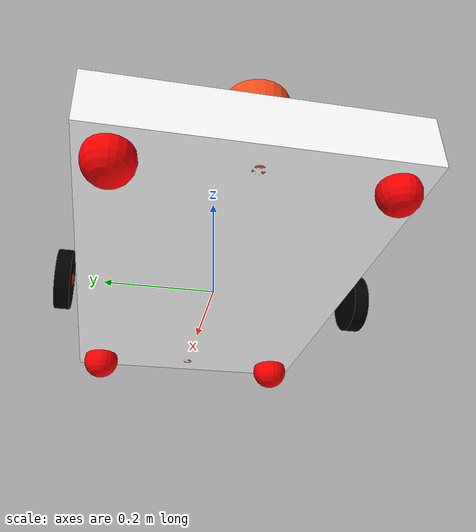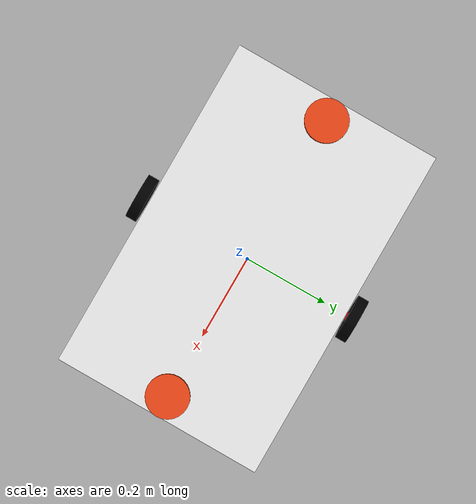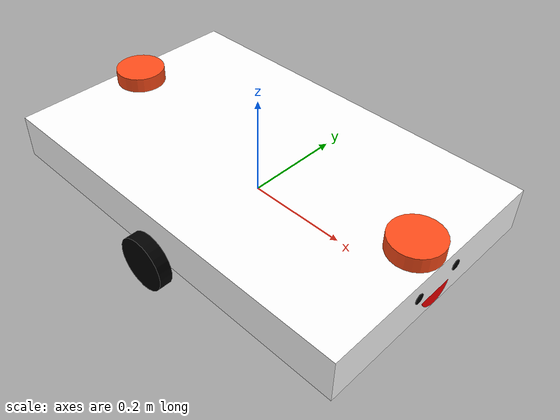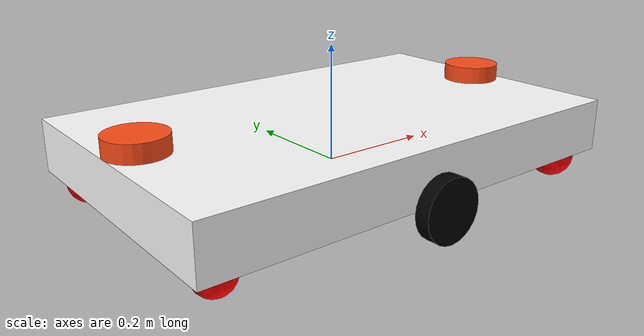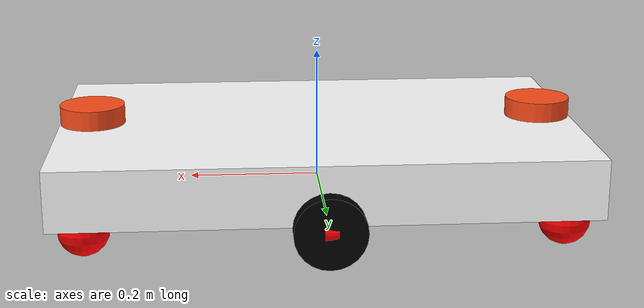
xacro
<?xml version="1.0"?>
<robot xmlns:xacro="http://www.ros.org/wiki/xacro"  name="robot">

    <xacro:arg name="use_ros2_control" default="true"/>
    <xacro:arg name="sim_mode" default="false"/>

    <xacro:include filename="robot_core.xacro" />

    <xacro:if value="$(arg use_ros2_control)">
        <xacro:include filename="ros2_control.xacro" />
    </xacro:if>
    <xacro:unless value="$(arg use_ros2_control)">
        <xacro:include filename="gazebo_control.xacro" />
    </xacro:unless>
    <xacro:include filename="lidar.xacro" />

    <xacro:include filename="face.xacro" />

</robot>

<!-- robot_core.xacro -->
<robot xmlns:xacro="http://www.ros.org/wiki/xacro" >

    <xacro:include filename="inertial_macros.xacro"/>

    <xacro:property name="chassis_length" value="0.80"/>
    <xacro:property name="chassis_width" value="0.50"/>
    <xacro:property name="chassis_height" value="0.09"/>
    <xacro:property name="chassis_mass" value="1.0"/>
    <xacro:property name="wheel_radius" value="0.053"/>
    <xacro:property name="wheel_thickness" value="0.026"/>
    <xacro:property name="wheel_mass" value="0.05"/>
    <xacro:property name="wheel_offset_x" value="0.40"/>
    <xacro:property name="wheel_offset_y" value="0.27"/>
    <xacro:property name="wheel_offset_z" value="0.0"/>

    <xacro:property name="caster_wheel_radius_left" value="0.038"/>
    <xacro:property name="caster_wheel_mass_left" value="0.01"/>
    <xacro:property name="caster_wheel_offset_x_left" value="0.75"/>
    <xacro:property name="caster_wheel_offset_y_left" value="0.20"/>
    <xacro:property name="caster_wheel_offset_z_left" value="-0.013"/>

    <xacro:property name="caster_wheel_radius_right" value="0.038"/>
    <xacro:property name="caster_wheel_mass_right" value="0.01"/>
    <xacro:property name="caster_wheel_offset_x_right" value="0.75"/>
    <xacro:property name="caster_wheel_offset_y_right" value="-0.20"/>
    <xacro:property name="caster_wheel_offset_z_right" value="-0.013"/>

    <xacro:property name="caster_wheel_radius_left_rear" value="0.038"/>
    <xacro:property name="caster_wheel_mass_left_rear" value="0.01"/>
    <xacro:property name="caster_wheel_offset_x_left_rear" value="0.05"/>
    <xacro:property name="caster_wheel_offset_y_left_rear" value="0.20"/>
    <xacro:property name="caster_wheel_offset_z_left_rear" value="-0.013"/>

    <xacro:property name="caster_wheel_radius_right_rear" value="0.033"/>
    <xacro:property name="caster_wheel_mass_right_rear" value="0.01"/>
    <xacro:property name="caster_wheel_offset_x_right_rear" value="0.05"/>
    <xacro:property name="caster_wheel_offset_y_right_rear" value="-0.20"/>
    <xacro:property name="caster_wheel_offset_z_right_rear" value="-0.013"/>

    <material name="white">
        <color rgba="1 1 1 1" />
    </material>

    <material name="orange">
        <color rgba="1 0.3 0.1 1"/>
    </material>

    <material name="blue">
        <color rgba="0.2 0.2 1 1"/>
    </material>

    <material name="black">
        <color rgba="0 0 0 1"/>
    </material>

    <material name="red">
        <color rgba="1 0 0 1"/>
    </material>

    <!-- BASE LINK -->

    <link name="base_link">

    </link>

    <!-- BASE_FOOTPRINT LINK -->

    <joint name="base_footprint_joint" type="fixed">
        <parent link="base_link"/>
        <child link="base_footprint"/>
        <origin xyz="0 0 0" rpy="0 0 0"/>
    </joint>

    <link name="base_footprint">
    </link>

    <!-- CHASSIS LINK -->

    <joint name="chassis_joint" type="fixed">
        <parent link="base_link"/>
        <child link="chassis"/>
        <origin xyz="${-wheel_offset_x} 0 ${-wheel_offset_z}"/>
    </joint>

    <link name="chassis">
        <visual>
            <origin xyz="${chassis_length/2} 0 ${chassis_height/2}"/>
            <geometry>
                <box size="${chassis_length} ${chassis_width} ${chassis_height}"/>
            </geometry>
            <material name="white"/>
        </visual>
        <collision>
            <origin xyz="${chassis_length/2} 0 ${chassis_height/2}"/>
            <geometry>
                <box size="${chassis_length} ${chassis_width} ${chassis_height}"/>
            </geometry>
        </collision>
        <xacro:inertial_box mass="0.5" x="${chassis_length}" y="${chassis_width}" z="${chassis_height}">
            <origin xyz="${chassis_length/2} 0 ${chassis_height/2}" rpy="0 0 0"/>
        </xacro:inertial_box>
    </link>

    <gazebo reference="chassis">
        <material>Gazebo/White</material>
    </gazebo>

    <!-- LEFT WHEEL LINK -->

    <joint name="left_wheel_joint" type="continuous">
        <parent link="base_link"/>
        <child link="left_wheel"/>
        <origin xyz="0 ${wheel_offset_y} 0" rpy="-${pi/2} 0 0" />twist_mux
        <axis xyz="0 0 1"/>
    </joint>

    <link name="left_wheel">
        <visual>
            <geometry>
                <cylinder radius="${wheel_radius}" length="${wheel_thickness}"/>
            </geometry>
            <material name="black"/>
        </visual>
        <collision>
            <geometry>
                <sphere radius="${wheel_radius}"/>
            </geometry>
        </collision>
        <xacro:inertial_cylinder mass="${wheel_mass}" length="${wheel_thickness}" radius="${wheel_radius}">
            <origin xyz="0 0 0" rpy="0 0 0"/>
        </xacro:inertial_cylinder>
    </link>

    <gazebo reference="left_wheel">
        <material>Gazebo/Black</material>
    </gazebo>

    <joint name="point_joint" type="fixed">
        <parent link="left_wheel"/>
        <child link="point"/>
        <origin xyz="0 0 0" rpy="0 0 0" />
        <axis xyz="0 0 1"/>
    </joint>

    <link name="point">
        <visual>
            <origin xyz="-0.0 0 0.00" rpy="0 ${1.5} 0"/>
            <geometry>
                <cylinder radius="0.015" length="0.02"/>
            </geometry>
            <material name="red"/>
        </visual>
    </link>

    <gazebo reference="point">
        <material>Gazebo/Red</material>
    </gazebo>

    <!-- RIGHT WHEEL LINK -->

    <joint name="right_wheel_joint" type="continuous">
        <parent link="base_link"/>
        <child link="right_wheel"/>
        <origin xyz="0 ${-wheel_offset_y} 0" rpy="${pi/2} 0 0" />
        <axis xyz="0 0 -1"/>
    </joint>

    <link name="right_wheel">
        <visual>
            <geometry>
                <cylinder radius="${wheel_radius}" length="${wheel_thickness}"/>
            </geometry>
            <material name="black"/>
        </visual>
        <collision>
            <geometry>
                <sphere radius="${wheel_radius}"/>
            </geometry>
        </collision>
        <xacro:inertial_cylinder mass="${wheel_mass}" length="${wheel_thickness}" radius="${wheel_radius}">
            <origin xyz="0 0 0" rpy="0 0 0"/>
        </xacro:inertial_cylinder>
    </link>

    <gazebo reference="right_wheel">
        <material>Gazebo/Black</material>
    </gazebo>

    <!-- CASTER WHEEL LEFT LINK -->

    <joint name="caster_wheel_joint_left" type="fixed">
        <parent link="chassis"/>
        <child link="caster_wheel_left"/>
        <origin xyz="${caster_wheel_offset_x_left} ${caster_wheel_offset_y_left}
        ${caster_wheel_offset_z_left}"/>
    </joint>

    <link name="caster_wheel_left">
        <visual>
            <geometry>
                <sphere radius="${caster_wheel_radius_left}"/>
            </geometry>
            <material name="red"/>
        </visual>
        <collision>
            <geometry>
                <sphere radius="${caster_wheel_radius_left}"/>
            </geometry>
        </collision>
        <xacro:inertial_sphere mass="${caster_wheel_mass_left}" radius="${caster_wheel_radius_left}">
            <origin xyz="0 0 0" rpy="0 0 0"/>
        </xacro:inertial_sphere>
    </link>

    <gazebo reference="caster_wheel_left">
        <material>Gazebo/Red</material>
        <mu1 value="0.001"/>
        <mu2 value="0.001"/>
    </gazebo>

<!-- CASTER WHEEL RIGHT LINK -->

    <joint name="caster_wheel_joint_right" type="fixed">
        <parent link="chassis"/>
        <child link="caster_wheel_right"/>
        <origin xyz="${caster_wheel_offset_x_right} ${caster_wheel_offset_y_right}
        ${caster_wheel_offset_z_right}"/>
    </joint>

    <link name="caster_wheel_right">
        <visual>
            <geometry>
                <sphere radius="${caster_wheel_radius_right}"/>
            </geometry>
            <material name="red"/>
        </visual>
        <collision>
            <geometry>
                <sphere radius="${caster_wheel_radius_right}"/>
            </geometry>
        </collision>
        <xacro:inertial_sphere mass="${caster_wheel_mass_right}" radius="${caster_wheel_radius_right}">
            <origin xyz="0 0 0" rpy="0 0 0"/>
        </xacro:inertial_sphere>
    </link>

    <gazebo reference="caster_wheel_right">
        <material>Gazebo/Red</material>
        <mu1 value="0.001"/>
        <mu2 value="0.001"/>
    </gazebo>

    <!-- CASTER WHEEL LEFT LINK REAR -->

    <joint name="caster_wheel_joint_left_rear" type="fixed">
        <parent link="chassis"/>
        <child link="caster_wheel_left_rear"/>
        <origin xyz="${caster_wheel_offset_x_left_rear} ${caster_wheel_offset_y_left_rear}
        ${caster_wheel_offset_z_left}"/>
    </joint>

    <link name="caster_wheel_left_rear">
        <visual>
            <geometry>
                <sphere radius="${caster_wheel_radius_left_rear}"/>
            </geometry>
            <material name="red"/>
        </visual>
        <collision>
            <geometry>
                <sphere radius="${caster_wheel_radius_left_rear}"/>
            </geometry>
        </collision>
        <xacro:inertial_sphere mass="${caster_wheel_mass_left_rear}" radius="${caster_wheel_radius_left_rear}">
            <origin xyz="0 0 0" rpy="0 0 0"/>
        </xacro:inertial_sphere>
    </link>

    <gazebo reference="caster_wheel_left_rear">
        <material>Gazebo/Red</material>
        <mu1 value="0.001"/>
        <mu2 value="0.001"/>
    </gazebo>

<!-- CASTER WHEEL RIGHT LINK REAR -->

    <joint name="caster_wheel_joint_right_rear" type="fixed">
        <parent link="chassis"/>
        <child link="caster_wheel_right_rear"/>
        <origin xyz="${caster_wheel_offset_x_right_rear} ${caster_wheel_offset_y_right_rear}
        ${caster_wheel_offset_z_right_rear}"/>
    </joint>

    <link name="caster_wheel_right_rear">
        <visual>
            <geometry>
                <sphere radius="${caster_wheel_radius_right_rear}"/>
            </geometry>
            <material name="red"/>
        </visual>
        <collision>
            <geometry>
                <sphere radius="${caster_wheel_radius_right_rear}"/>
            </geometry>
        </collision>
        <xacro:inertial_sphere mass="${caster_wheel_mass_right_rear}" radius="${caster_wheel_radius_right_rear}">
            <origin xyz="0 0 0" rpy="0 0 0"/>
        </xacro:inertial_sphere>
    </link>

    <gazebo reference="caster_wheel_right_rear">
        <material>Gazebo/Red</material>
        <mu1 value="0.001"/>
        <mu2 value="0.001"/>
    </gazebo>

    <!-- imu -->
    <joint name="imu_joint" type="fixed">
        <parent link="chassis"/>
        <child link="imu_link"/>
        <origin xyz="0.40 0 0.055" rpy="0 0 0"/>
    </joint>

    <link name="imu_link">
        <visual>
            <geometry>
                <box size="0.05 0.05 0.05"/>
            </geometry>
            <material name="red"/>
        </visual>
        <collision>
            <geometry>
                <box size="0.05 0.05 0.05"/>
            </geometry>
        </collision>
        <inertial>
            <mass value="0.01"/>
            <origin xyz="0 0 0" rpy="0 0 0"/>
            <inertia ixx="0.0001" ixy="0" ixz="0" iyy="0.0001" iyz="0" izz="0.0001"/>
        </inertial>
    </link>
</robot>

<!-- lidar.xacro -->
<robot xmlns:xacro="http://www.ros.org/wiki/xacro">

    <!-- Pi = 3.14159 -->
    <joint name="laser_joint" type="fixed">
        <parent link="chassis"/>
        <child link="laser_frame"/>
        <origin xyz="0.75 0 0.10" rpy="0 0 0"/>
    </joint>

    <link name="laser_frame">
        <visual>
            <geometry>
                <cylinder radius="0.05" length="0.04"/>
            </geometry>
            <material name="orange"/>
        </visual>
        <visual>
            <origin xyz="0 0 -0.05"/>
            <geometry>
                <cylinder radius="0.01" length="0.1"/>
            </geometry>
            <material name="orange"/>
        </visual>
        <collision>
            <geometry>
                <cylinder radius="0.05" length="0.04"/>
            </geometry>
        </collision>
        <xacro:inertial_cylinder mass="0.1" length="0.04" radius="0.05">
            <origin xyz="0 0 0" rpy="0 0 0"/>
        </xacro:inertial_cylinder>
    </link>

    <joint name="laser_joint2" type="fixed">
        <parent link="chassis"/>
        <child link="laser_frame2"/>
        <origin xyz="0.05 0 0.10" rpy="0 0 3.14159"/>
    </joint>

    <link name="laser_frame2">
        <visual>
            <geometry>
                <cylinder radius="0.05" length="0.04"/>
            </geometry>
            <material name="orange"/>
        </visual>
        <visual>
            <origin xyz="0 0 -0.05"/>
            <geometry>
                <cylinder radius="0.01" length="0.1"/>
            </geometry>
            <material name="orange"/>
        </visual>
        <collision>
            <geometry>
                <cylinder radius="0.05" length="0.04"/>
            </geometry>
        </collision>
        <xacro:inertial_cylinder mass="0.1" length="0.04" radius="0.05">
            <origin xyz="0 0 0" rpy="0 0 0"/>
        </xacro:inertial_cylinder>
    </link>

    <gazebo reference="laser_frame">
        <material>Gazebo/Black</material>
        <sensor name="laser" type="ray">
            <pose> 0 0 0 0 0 3.14 </pose>
            <visualize>true</visualize>
            <update_rate>10</update_rate>
            <ray>
                <scan>
                    <horizontal>
                        <samples>180</samples>
                        <min_angle>-1.57</min_angle>
                        <max_angle>1.57</max_angle>
                    </horizontal>
                </scan>
                <range>
                    <min>0.3</min>
                    <max>12</max>
                </range>
            </ray>
            <plugin name="laser_controller" filename="libgazebo_ros_ray_sensor.so">
                <ros>
                    <argument>~/out:=scan</argument>
                </ros>
                <output_type>sensor_msgs/LaserScan</output_type>
                <frame_name>laser_frame</frame_name>
            </plugin>
        </sensor>
    </gazebo>

    <gazebo reference="laser_frame2">
        <material>Gazebo/Black</material>
        <sensor name="laser2" type="ray">
            <pose> 0 0 0 0 0 3.14 </pose>
            <visualize>true</visualize>
            <update_rate>10</update_rate>
            <ray>
                <scan>
                    <horizontal>
                        <samples>180</samples>
                        <min_angle>-1.57</min_angle>
                        <max_angle>1.57</max_angle>
                    </horizontal>
                </scan>
                <range>
                    <min>0.3</min>
                    <max>12</max>
                </range>
            </ray>
            <plugin name="laser_controller2" filename="libgazebo_ros_ray_sensor.so">
                <ros>
                    <argument>~/out:=scan2</argument>
                </ros>
                <output_type>sensor_msgs/LaserScan</output_type>
                <frame_name>laser_frame2</frame_name>
            </plugin>
        </sensor>
    </gazebo>

</robot>

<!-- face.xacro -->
<robot xmlns:xacro="http://www.ros.org/wiki/xacro" >

    <joint name="face_joint" type="fixed">
        <parent link="chassis"/>
        <child link="face_link"/>
        <origin xyz="${chassis_length} 0 ${chassis_height/2}" rpy="0 0 0"/>
    </joint>

    <link name="face_link">
        <visual>
            <origin xyz="0 0.05 0.01" rpy="0 ${pi/2} 0"/>
            <geometry>
                <cylinder radius="0.01" length="0.002"/>
            </geometry>
            <material name="black"/>
        </visual>

        <visual>
            <origin xyz="0 -0.05 0.01" rpy="0 ${pi/2} 0"/>
            <geometry>
                <cylinder radius="0.01" length="0.002"/>
            </geometry>
            <material name="black"/>
        </visual>

        <visual>
            <origin xyz="-0.011 0 -0.00" rpy="0 ${1.5} 0"/>
            <geometry>
                <cylinder radius="0.04" length="0.02"/>
            </geometry>
            <material name="red"/>
        </visual>
    </link>

    <gazebo reference="face_link">
        <material>Gazebo/Black</material>
    </gazebo>

</robot>
